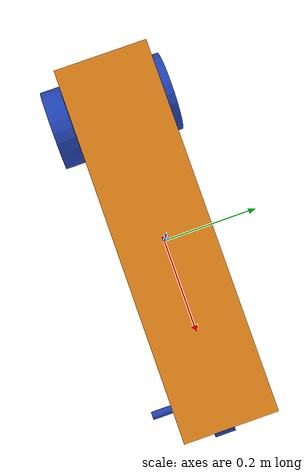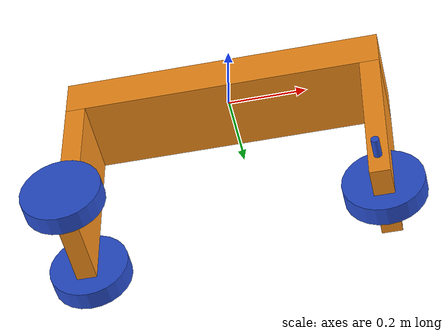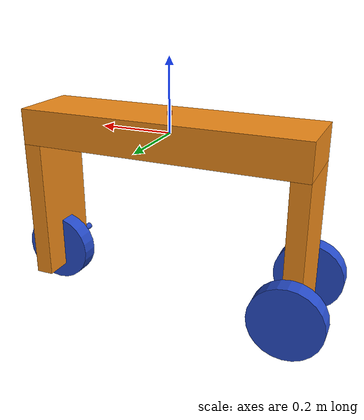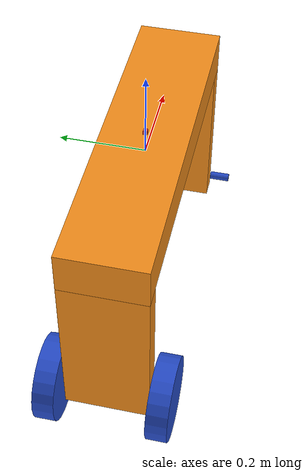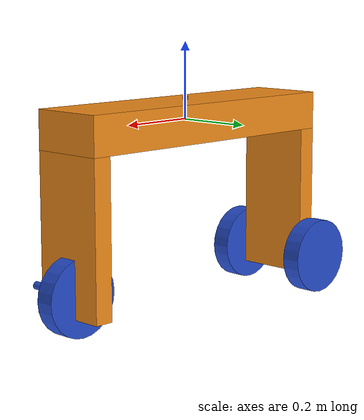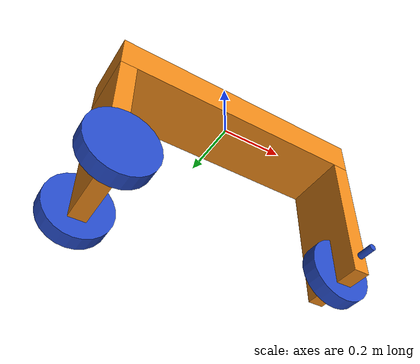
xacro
<?xml version='1.0'?>

<robot name="myrobot" xmlns:xacro="http://www.ros.org/wiki/xacro">

  <xacro:property name="cameraSize" value="0.05"/>
  <xacro:property name="cameraMass" value="0.1"/>

  <xacro:include filename="$(find mybot_description)/urdf/mybot.gazebo" />
  <xacro:include filename="$(find mybot_description)/urdf/materials.xacro" />
  <xacro:include filename="$(find mybot_description)/urdf/macros.xacro" />

  <link name='chassis'>
    <inertial>
      <mass value="75.0"/>
      <origin xyz="0.0 0 0.0" rpy=" 0 0 0"/>
      <inertia
          ixx="0.3125" ixy="0" ixz="0"
          iyy="4.25" iyz="0"
          izz="4.0625"
      />
    </inertial>

    <collision name='collision'>
      <origin xyz="0 0 0" rpy=" 0 0 0"/>
      <geometry>
        <box size=".8 .2 .1"/>
      </geometry>
    </collision>

    <visual name='chassis_visual'>
      <origin xyz="0 0 0" rpy=" 0 0 0"/>
      <geometry>
        <box size=".8 .2 .1"/>
      </geometry>
    </visual>

    <collision name='support1_collision'>
      <origin xyz="-0.375 0 -0.25" rpy=" 0 0 0"/>
      <geometry>
        <box size="0.05 0.2 0.4" />
      </geometry>
    </collision>

    <visual name='chassis_visual'>
      <origin xyz="-0.375 0 -0.25" rpy=" 0 0 0"/>
      <geometry>
        <box size="0.05 0.2 0.4" />
      </geometry>
    </visual>

    <collision name='support2_collision'>
      <origin xyz="0.375 0 -0.25" rpy=" 0 0 0"/>
      <geometry>
        <box size="0.05 0.2 0.4" />
      </geometry>
    </collision>

    <visual name='chassis_visual'>
      <origin xyz="0.375 0 -0.25" rpy=" 0 0 0"/>
      <geometry>
        <box size="0.05 0.2 0.4" />
      </geometry>
    </visual>

  </link>

  <link name="left_wheel">
    <!--origin xyz="0.1 0.13 0.1" rpy="0 1.5707 1.5707"/-->
    <collision name="collision">
      <origin xyz="0 0 0" rpy="0 1.5707 1.5707"/>
      <geometry>
        <cylinder radius="0.1" length="0.05"/>
      </geometry>
      <surface>
        <friction>
          <ode>
            <mu>200.0</mu>
            <mu2>200</mu2>
          </ode>
        </friction>
      </surface>
    </collision>
    <visual name="left_wheel_visual">
      <origin xyz="0 0 0" rpy="0 1.5707 1.5707"/>
      <geometry>
        <cylinder radius="0.1" length="0.05"/>
      </geometry>
    </visual>
    <inertial>
      <origin xyz="0 0 0" rpy="0 1.5707 1.5707"/>
      <mass value="0.5"/>
      <inertia
        ixx=".00135" ixy="0.0" ixz="0.0"
        iyy=".00135" iyz="0.0"
        izz=".0025"/>
    </inertial>
  </link>

<link name="left_wheel_rear">
    <!--origin xyz="0.1 0.13 0.1" rpy="0 1.5707 1.5707"/-->
    <collision name="collision">
      <origin xyz="0 0 0" rpy="0 1.5707 1.5707"/>
      <geometry>
        <cylinder radius="0.1" length="0.05"/>
      </geometry>
      <surface>
        <friction>
          <ode>
            <mu>200.0</mu>
            <mu2>200</mu2>
          </ode>
        </friction>
      </surface>
    </collision>
    <visual name="left_wheel_rear_visual">
      <origin xyz="0 0 0" rpy="0 1.5707 1.5707"/>
      <geometry>
        <cylinder radius="0.1" length="0.05"/>
      </geometry>
    </visual>
    <inertial>
      <origin xyz="0 0 0" rpy="0 1.5707 1.5707"/>
      <mass value="0.5"/>
      <inertia
        ixx=".00135" ixy="0.0" ixz="0.0"
        iyy=".00135" iyz="0.0"
        izz=".0025"/>
    </inertial>
  </link>

  <link name="right_wheel">
    <!--origin xyz="0.1 -0.13 0.1" rpy="0 1.5707 1.5707"/-->
    <collision name="collision">
      <origin xyz="0 0 0" rpy="0 -1.5707 -1.5707"/>
      <geometry>
        <cylinder radius="0.01" length="0.05"/>
      </geometry>
      <surface>
        <friction>
          <ode>
            <mu>200.0</mu>
            <mu2>200</mu2>
          </ode>
        </friction>
      </surface>
    </collision>
    <visual name="right_wheel_visual">
      <origin xyz="0 0 0" rpy="0 -1.5707 -1.5707"/>
      <geometry>
        <cylinder radius="0.01" length="0.05"/>
      </geometry>
    </visual>
    <inertial>
      <origin xyz="0 0 0" rpy="0 1.5707 1.5707"/>
      <mass value="0.5"/>
      <inertia
        ixx=".00135" ixy="0.0" ixz="0.0"
        iyy=".00135" iyz="0.0"
        izz=".0025"/>
    </inertial>
  </link>

  <link name="right_wheel_rear">
    <!--origin xyz="0.1 -0.13 0.1" rpy="0 1.5707 1.5707"/-->
    <collision name="collision">
      <origin xyz="0 0 0" rpy="0 -1.5707 -1.5707"/>
      <geometry>
        <cylinder radius="0.1" length="0.05"/>
      </geometry>
      <surface>
        <friction>
          <ode>
            <mu>200.0</mu>
            <mu2>200</mu2>
          </ode>
        </friction>
      </surface>
    </collision>
    <visual name="right_wheel_rear_visual">
      <origin xyz="0 0 0" rpy="0 -1.5707 -1.5707"/>
      <geometry>
        <cylinder radius="0.1" length="0.05"/>
      </geometry>
    </visual>
    <inertial>
      <origin xyz="0 0 0" rpy="0 1.5707 1.5707"/>
      <mass value="0.5"/>
      <inertia
        ixx=".00135" ixy="0.0" ixz="0.0"
        iyy=".00135" iyz="0.0"
        izz=".0025"/>
    </inertial>
  </link>

  <link name="imu_link">
    <!--origin xyz="0.1 -0.13 0.1" rpy="0 1.5707 1.5707"/-->
    <collision name="collision">
      <origin xyz="0 0 0" rpy="0 1.5707 1.5707"/>
      <geometry>
        <box size="0.01 0.01 0.01"/>
      </geometry>
    </collision>
    <visual name="imu_link_visual">
      <origin xyz="0 0 0" rpy="0 1.5707 1.5707"/>
      <geometry>
        <box size="0.01 0.01 0.01"/>
      </geometry>
    </visual>
    <inertial>
      <origin xyz="0 0 0" rpy="0 1.5707 1.5707"/>
      <mass value="0.0001"/>
      <inertia
        ixx=".000001" ixy="0.0" ixz="0.0"
        iyy=".000001" iyz="0.0"
        izz=".000001"/>
    </inertial>
  </link>

  <joint type="fixed" name="imu_hinge">
    <origin xyz="0 0 0.055" rpy="0 0 0"/>
    <!--origin xyz="0.1 -0.13 0" rpy="0 1.5707 1.5707"/-->
    <child link="imu_link"/>
    <parent link="chassis"/>
    <axis xyz="0 1 0" rpy="0 0 0"/>
    <limit effort="10000" velocity="1000"/>
    <joint_properties damping="1.0" friction="1.0"/>
  </joint>

  <joint type="continuous" name="left_wheel_hinge">
    <origin xyz="0.375 0.0 -0.4" rpy="0 0 0"/>
    <!--origin xyz="0.1 0.13 0" rpy="0 1.5707 1.5707"/-->
    <child link="left_wheel"/>
    <parent link="chassis"/>
    <axis xyz="0 1 0" rpy="0 0 0"/>
    <limit effort="100" velocity="100"/>
    <joint_properties damping="10.0" friction="10.0"/>
  </joint>

  <joint type="continuous" name="right_wheel_hinge">
    <origin xyz="0.375 -0.13 -0.4" rpy="0 0 0"/>
    <!--origin xyz="0.1 -0.13 0" rpy="0 1.5707 1.5707"/-->
    <child link="right_wheel"/>
    <parent link="chassis"/>
    <axis xyz="0 1 0" rpy="0 0 0"/>
    <limit effort="100" velocity="100"/>
    <joint_properties damping="10.0" friction="10.0"/>
  </joint>

  <joint type="continuous" name="left_wheel_rear_hinge">
    <origin xyz="-0.375 0.13 -0.4" rpy="0 0 0"/>
    <!--origin xyz="0.1 0.13 0" rpy="0 1.5707 1.5707"/-->
    <child link="left_wheel_rear"/>
    <parent link="chassis"/>
    <axis xyz="0 1 0" rpy="0 0 0"/>
    <limit effort="100" velocity="100"/>
    <joint_properties damping="10.0" friction="0.0"/>
  </joint>

  <joint type="continuous" name="right_wheel_rear_hinge">
    <origin xyz="-0.375 -0.13 -0.4" rpy="0 0 0"/>
    <!--origin xyz="0.1 -0.13 0" rpy="0 1.5707 1.5707"/-->
    <child link="right_wheel_rear"/>
    <parent link="chassis"/>
    <axis xyz="0 1 0" rpy="0 0 0"/>
    <limit effort="100" velocity="100"/>
    <joint_properties damping="10.0" friction="0.0"/>
  </joint>

  <transmission name="tran_LF">
    <type>transmission_interface/SimpleTransmission</type>
    <joint name="left_wheel_hinge">
      <hardwareInterface>hardware_interface/EffortJointInterface</hardwareInterface>
    </joint>
    <actuator name="motor_LF">
      <hardwareInterface>hardware_interface/EffortJointInterface</hardwareInterface>
      <mechanicalReduction>1</mechanicalReduction>
    </actuator>
  </transmission>

  <transmission name="tran_RF">
    <type>transmission_interface/SimpleTransmission</type>
    <joint name="right_wheel_hinge">
      <hardwareInterface>hardware_interface/EffortJointInterface</hardwareInterface>
    </joint>
    <actuator name="motor_RF">
      <hardwareInterface>hardware_interface/EffortJointInterface</hardwareInterface>
      <mechanicalReduction>1</mechanicalReduction>
    </actuator>
  </transmission>

  <transmission name="tran_LR">
    <type>transmission_interface/SimpleTransmission</type>
    <joint name="left_wheel_rear_hinge">
      <hardwareInterface>hardware_interface/EffortJointInterface</hardwareInterface>
    </joint>
    <actuator name="motor_LR">
      <hardwareInterface>hardware_interface/EffortJointInterface</hardwareInterface>
      <mechanicalReduction>1</mechanicalReduction>
    </actuator>
  </transmission>

  <transmission name="tran_RR">
    <type>transmission_interface/SimpleTransmission</type>
    <joint name="right_wheel_rear_hinge">
      <hardwareInterface>hardware_interface/EffortJointInterface</hardwareInterface>
    </joint>
    <actuator name="motor_RR">
      <hardwareInterface>hardware_interface/EffortJointInterface</hardwareInterface>
      <mechanicalReduction>1</mechanicalReduction>
    </actuator>
  </transmission>

</robot>
